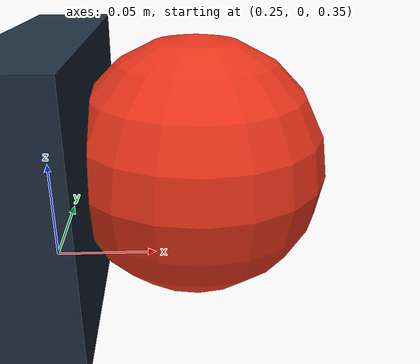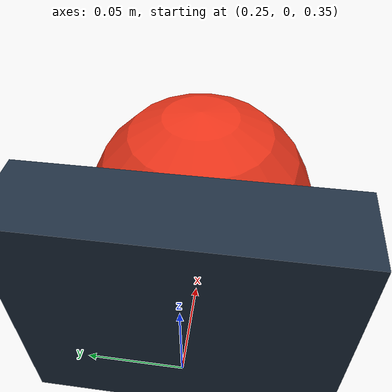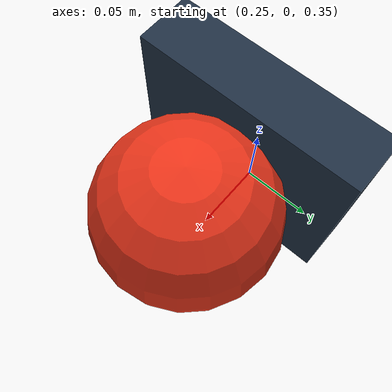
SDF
<?xml version="1.0"?>
<sdf version="1.9">
  <model name="drone">
    <pose>0 0 0.4 0 0 0</pose>
    <link name="base_link">
      <inertial>
        <mass>1.5</mass>
        <inertia><ixx>0.03</ixx><iyy>0.03</iyy><izz>0.05</izz></inertia>
      </inertial>
      <collision name="collision">
        <geometry><box><size>0.55 0.55 0.12</size></box></geometry>
      </collision>
      <visual name="body">
        <geometry><box><size>0.55 0.55 0.12</size></box></geometry>
        <material><diffuse>0.12 0.18 0.25 1</diffuse></material>
      </visual>
      <visual name="front">
        <pose>0.32 0 0 0 0 0</pose>
        <geometry><sphere><radius>0.06</radius></sphere></geometry>
        <material><diffuse>0.9 0.2 0.1 1</diffuse></material>
      </visual>
      <sensor name="imu" type="imu">
        <always_on>true</always_on><update_rate>100</update_rate>
        <topic>imu</topic>
      </sensor>
      <sensor name="lidar" type="gpu_lidar">
        <pose>0 0 0.08 0 0 0</pose>
        <always_on>true</always_on><update_rate>10</update_rate>
        <topic>scan</topic>
        <lidar>
          <scan><horizontal><samples>360</samples><min_angle>-3.14159</min_angle><max_angle>3.14159</max_angle></horizontal></scan>
          <range><min>0.15</min><max>30</max><resolution>0.02</resolution></range>
        </lidar>
      </sensor>
    </link>
    <plugin filename="gz-sim-velocity-control-system" name="gz::sim::systems::VelocityControl"/>
  </model>
</sdf>
